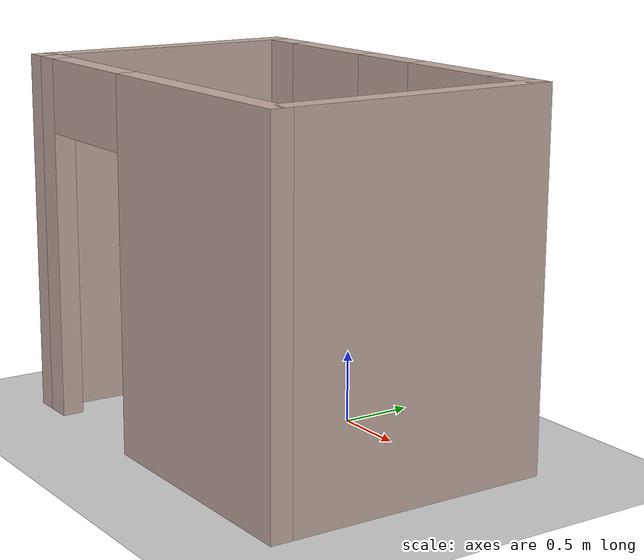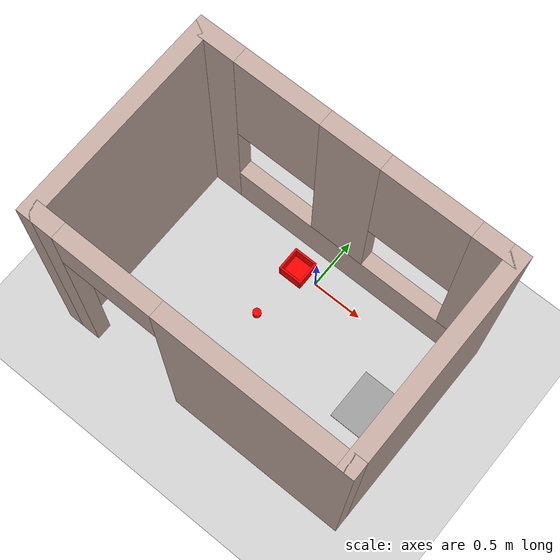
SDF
<sdf version="1.7">
 <world name="default">
  <model name="ground_plane">
   <static>1</static>
   <link name="link">
    <collision name="collision">
     <geometry><plane><normal>0 0 1</normal><size>100 100</size></plane></geometry>
     <surface>
      <contact><collide_bitmask>65535</collide_bitmask></contact>
      <friction><ode><mu>100</mu><mu2>50</mu2></ode></friction>
     </surface>
    </collision>
    <visual name="visual">
     <cast_shadows>0</cast_shadows>
     <geometry><plane><normal>0 0 1</normal><size>100 100</size></plane></geometry>
     <material>
      <script><uri>file://media/materials/scripts/gazebo.material</uri><name>Gazebo/Grey</name></script>
     </material>
    </visual>
   </link>
  </model>
  <model name="box_red">
   <link name="link_0">
    <inertial>
     <mass>0.94</mass>
     <inertia>
      <ixx>0.00316467</ixx>
      <ixy>0</ixy>
      <ixz>0</ixz>
      <iyy>0.00316467</iyy>
      <iyz>0</iyz>
      <izz>0.00626667</izz>
     </inertia>
    </inertial>
    <pose>0 0 -0.03 0 -0 0</pose>
    <visual name="visual">
     <geometry><box><size>0.2 0.2 0.02</size></box></geometry>
     <material>
      <lighting>1</lighting>
      <script><uri>file://media/materials/scripts/gazebo.material</uri><name>Gazebo/Grey</name></script>
      <shader type="pixel"><normal_map>__default__</normal_map></shader>
      <ambient>1 0 0 1</ambient>
      <diffuse>0.7 0.7 0.7 1</diffuse>
      <specular>0.01 0.01 0.01 1</specular>
      <emissive>0 0 0 1</emissive>
     </material>
    </visual>
    <collision name="collision">
     <geometry><box><size>0.2 0.2 0.02</size></box></geometry>
     <surface>
      <friction>
       <ode><mu>1</mu><mu2>1</mu2><fdir1>0 0 0</fdir1><slip1>0</slip1><slip2>0</slip2></ode>
       <torsional>
        <coefficient>1</coefficient>
        <patch_radius>0</patch_radius>
        <surface_radius>0</surface_radius>
        <use_patch_radius>1</use_patch_radius>
        <ode><slip>0</slip></ode>
       </torsional>
      </friction>
      <bounce><restitution_coefficient>0</restitution_coefficient><threshold>1e+06</threshold></bounce>
      <contact>
       <collide_without_contact>0</collide_without_contact>
       <collide_without_contact_bitmask>1</collide_without_contact_bitmask>
       <collide_bitmask>1</collide_bitmask>
       <ode>
        <soft_cfm>0</soft_cfm>
        <soft_erp>0.2</soft_erp>
        <kp>1e+13</kp>
        <kd>1</kd>
        <max_vel>0.01</max_vel>
        <min_depth>0</min_depth>
       </ode>
       <bullet>
        <split_impulse>1</split_impulse>
        <split_impulse_penetration_threshold>-0.01</split_impulse_penetration_threshold>
        <soft_cfm>0</soft_cfm>
        <soft_erp>0.2</soft_erp>
        <kp>1e+13</kp>
        <kd>1</kd>
       </bullet>
      </contact>
     </surface>
    </collision>
   </link>
   <link name="link_1">
    <inertial>
     <mass>2.256</mass>
     <inertia>
      <ixx>0.0409088</ixx>
      <ixy>0</ixy>
      <ixz>0</ixz>
      <iyy>0.0301552</iyy>
      <iyz>0</iyz>
      <izz>0.010904</izz>
     </inertia>
    </inertial>
    <pose>-0.11 0 0.038 0 -0 0</pose>
    <visual name="visual">
     <geometry><box><size>0.02 0.24 0.15</size></box></geometry>
     <material>
      <lighting>1</lighting>
      <script><uri>file://media/materials/scripts/gazebo.material</uri><name>Gazebo/Grey</name></script>
      <shader type="pixel"><normal_map>__default__</normal_map></shader>
      <ambient>1 0 0 1</ambient>
      <diffuse>0.7 0.7 0.7 1</diffuse>
      <specular>0.01 0.01 0.01 1</specular>
      <emissive>0 0 0 1</emissive>
     </material>
    </visual>
    <collision name="collision">
     <geometry><box><size>0.02 0.24 0.15</size></box></geometry>
     <surface>
      <friction>
       <ode><mu>1</mu><mu2>1</mu2><fdir1>0 0 0</fdir1><slip1>0</slip1><slip2>0</slip2></ode>
       <torsional>
        <coefficient>1</coefficient>
        <patch_radius>0</patch_radius>
        <surface_radius>0</surface_radius>
        <use_patch_radius>1</use_patch_radius>
        <ode><slip>0</slip></ode>
       </torsional>
      </friction>
      <bounce><restitution_coefficient>0</restitution_coefficient><threshold>1e+06</threshold></bounce>
      <contact>
       <collide_without_contact>0</collide_without_contact>
       <collide_without_contact_bitmask>1</collide_without_contact_bitmask>
       <collide_bitmask>1</collide_bitmask>
       <ode>
        <soft_cfm>0</soft_cfm>
        <soft_erp>0.2</soft_erp>
        <kp>1e+13</kp>
        <kd>1</kd>
        <max_vel>0.01</max_vel>
        <min_depth>0</min_depth>
       </ode>
       <bullet>
        <split_impulse>1</split_impulse>
        <split_impulse_penetration_threshold>-0.01</split_impulse_penetration_threshold>
        <soft_cfm>0</soft_cfm>
        <soft_erp>0.2</soft_erp>
        <kp>1e+13</kp>
        <kd>1</kd>
       </bullet>
      </contact>
     </surface>
    </collision>
   </link>
   <link name="link_1_clone">
    <inertial>
     <mass>2.256</mass>
     <inertia>
      <ixx>0.0409088</ixx>
      <ixy>0</ixy>
      <ixz>0</ixz>
      <iyy>0.0301552</iyy>
      <iyz>0</iyz>
      <izz>0.010904</izz>
     </inertia>
    </inertial>
    <pose>0.11 -0 0.038 0 -0 0</pose>
    <visual name="visual">
     <geometry><box><size>0.02 0.24 0.15</size></box></geometry>
     <material>
      <lighting>1</lighting>
      <script><uri>file://media/materials/scripts/gazebo.material</uri><name>Gazebo/Grey</name></script>
      <shader type="pixel"><normal_map>__default__</normal_map></shader>
      <ambient>1 0 0 1</ambient>
      <diffuse>0.7 0.7 0.7 1</diffuse>
      <specular>0.01 0.01 0.01 1</specular>
      <emissive>0 0 0 1</emissive>
     </material>
    </visual>
    <collision name="collision">
     <geometry><box><size>0.02 0.24 0.15</size></box></geometry>
     <surface>
      <friction>
       <ode><mu>1</mu><mu2>1</mu2><fdir1>0 0 0</fdir1><slip1>0</slip1><slip2>0</slip2></ode>
       <torsional>
        <coefficient>1</coefficient>
        <patch_radius>0</patch_radius>
        <surface_radius>0</surface_radius>
        <use_patch_radius>1</use_patch_radius>
        <ode><slip>0</slip></ode>
       </torsional>
      </friction>
      <bounce><restitution_coefficient>0</restitution_coefficient><threshold>1e+06</threshold></bounce>
      <contact>
       <collide_without_contact>0</collide_without_contact>
       <collide_without_contact_bitmask>1</collide_without_contact_bitmask>
       <collide_bitmask>1</collide_bitmask>
       <ode>
        <soft_cfm>0</soft_cfm>
        <soft_erp>0.2</soft_erp>
        <kp>1e+13</kp>
        <kd>1</kd>
        <max_vel>0.01</max_vel>
        <min_depth>0</min_depth>
       </ode>
       <bullet>
        <split_impulse>1</split_impulse>
        <split_impulse_penetration_threshold>-0.01</split_impulse_penetration_threshold>
        <soft_cfm>0</soft_cfm>
        <soft_erp>0.2</soft_erp>
        <kp>1e+13</kp>
        <kd>1</kd>
       </bullet>
      </contact>
     </surface>
    </collision>
   </link>
   <link name="link_1_clone_0">
    <inertial>
     <mass>1.88</mass>
     <inertia>
      <ixx>0.0251293</ixx>
      <ixy>0</ixy>
      <ixz>0</ixz>
      <iyy>0.0313333</iyy>
      <iyz>0</iyz>
      <izz>0.00632933</izz>
     </inertia>
    </inertial>
    <pose>0 0.11 0.038 0 -0 0</pose>
    <visual name="visual">
     <geometry><box><size>0.2 0.02 0.15</size></box></geometry>
     <material>
      <lighting>1</lighting>
      <script><uri>file://media/materials/scripts/gazebo.material</uri><name>Gazebo/Grey</name></script>
      <shader type="pixel"><normal_map>__default__</normal_map></shader>
      <ambient>1 0 0 1</ambient>
      <diffuse>0.7 0.7 0.7 1</diffuse>
      <specular>0.01 0.01 0.01 1</specular>
      <emissive>0 0 0 1</emissive>
     </material>
    </visual>
    <collision name="collision">
     <geometry><box><size>0.2 0.02 0.15</size></box></geometry>
     <surface>
      <friction>
       <ode><mu>1</mu><mu2>1</mu2><fdir1>0 0 0</fdir1><slip1>0</slip1><slip2>0</slip2></ode>
       <torsional>
        <coefficient>1</coefficient>
        <patch_radius>0</patch_radius>
        <surface_radius>0</surface_radius>
        <use_patch_radius>1</use_patch_radius>
        <ode><slip>0</slip></ode>
       </torsional>
      </friction>
      <bounce><restitution_coefficient>0</restitution_coefficient><threshold>1e+06</threshold></bounce>
      <contact>
       <collide_without_contact>0</collide_without_contact>
       <collide_without_contact_bitmask>1</collide_without_contact_bitmask>
       <collide_bitmask>1</collide_bitmask>
       <ode>
        <soft_cfm>0</soft_cfm>
        <soft_erp>0.2</soft_erp>
        <kp>1e+13</kp>
        <kd>1</kd>
        <max_vel>0.01</max_vel>
        <min_depth>0</min_depth>
       </ode>
       <bullet>
        <split_impulse>1</split_impulse>
        <split_impulse_penetration_threshold>-0.01</split_impulse_penetration_threshold>
        <soft_cfm>0</soft_cfm>
        <soft_erp>0.2</soft_erp>
        <kp>1e+13</kp>
        <kd>1</kd>
       </bullet>
      </contact>
     </surface>
    </collision>
   </link>
   <link name="link_1_clone_0_clone">
    <inertial>
     <mass>1.88</mass>
     <inertia>
      <ixx>0.0251293</ixx>
      <ixy>0</ixy>
      <ixz>0</ixz>
      <iyy>0.0313333</iyy>
      <iyz>0</iyz>
      <izz>0.00632933</izz>
     </inertia>
    </inertial>
    <pose>-0 -0.11 0.038 0 -0 0</pose>
    <visual name="visual">
     <geometry><box><size>0.2 0.02 0.15</size></box></geometry>
     <material>
      <lighting>1</lighting>
      <script><uri>file://media/materials/scripts/gazebo.material</uri><name>Gazebo/Grey</name></script>
      <shader type="pixel"><normal_map>__default__</normal_map></shader>
      <ambient>1 0 0 1</ambient>
      <diffuse>0.7 0.7 0.7 1</diffuse>
      <specular>0.01 0.01 0.01 1</specular>
      <emissive>0 0 0 1</emissive>
     </material>
    </visual>
    <collision name="collision">
     <geometry><box><size>0.2 0.02 0.15</size></box></geometry>
     <surface>
      <friction>
       <ode><mu>1</mu><mu2>1</mu2><fdir1>0 0 0</fdir1><slip1>0</slip1><slip2>0</slip2></ode>
       <torsional>
        <coefficient>1</coefficient>
        <patch_radius>0</patch_radius>
        <surface_radius>0</surface_radius>
        <use_patch_radius>1</use_patch_radius>
        <ode><slip>0</slip></ode>
       </torsional>
      </friction>
      <bounce><restitution_coefficient>0</restitution_coefficient><threshold>1e+06</threshold></bounce>
      <contact>
       <collide_without_contact>0</collide_without_contact>
       <collide_without_contact_bitmask>1</collide_without_contact_bitmask>
       <collide_bitmask>1</collide_bitmask>
       <ode>
        <soft_cfm>0</soft_cfm>
        <soft_erp>0.2</soft_erp>
        <kp>1e+13</kp>
        <kd>1</kd>
        <max_vel>0.01</max_vel>
        <min_depth>0</min_depth>
       </ode>
       <bullet>
        <split_impulse>1</split_impulse>
        <split_impulse_penetration_threshold>-0.01</split_impulse_penetration_threshold>
        <soft_cfm>0</soft_cfm>
        <soft_erp>0.2</soft_erp>
        <kp>1e+13</kp>
        <kd>1</kd>
       </bullet>
      </contact>
     </surface>
    </collision>
   </link>
   <static>0</static>
   <pose>-0.2 0 0.03 0 -0 0</pose>
  </model>
  <model name="simple_room">
   <link name="Wall_0">
    <collision name="Wall_0_Collision">
     <geometry><box><size>2 0.15 2.5</size></box></geometry>
     <pose>0 0 1.25 0 -0 0</pose>
    </collision>
    <visual name="Wall_0_Visual">
     <pose>0 0 1.25 0 -0 0</pose>
     <geometry><box><size>2 0.15 2.5</size></box></geometry>
     <material>
      <script><uri>file://media/materials/scripts/gazebo.material</uri><name>Gazebo/Grey</name></script>
      <ambient>0.760784 0.662745 0.627451 1</ambient>
     </material>
     <meta><layer>0</layer></meta>
    </visual>
    <pose>-1.425 -0.6025 0 0 -0 1.5708</pose>
   </link>
   <link name="Wall_1">
    <pose>0 0.3225 0 0 -0 0</pose>
    <visual name="Wall_1_Visual_0">
     <pose>-1.2825 0 1.25 0 -0 0</pose>
     <geometry><box><size>0.435 0.15 2.5</size></box></geometry>
     <material>
      <script><uri>file://media/materials/scripts/gazebo.material</uri><name>Gazebo/Grey</name></script>
      <ambient>0.760784 0.662745 0.627451 1</ambient>
     </material>
     <meta><layer>0</layer></meta>
    </visual>
    <collision name="Wall_1_Collision_0">
     <geometry><box><size>0.435 0.15 2.5</size></box></geometry>
     <pose>-1.2825 0 1.25 0 -0 0</pose>
    </collision>
    <visual name="Wall_1_Visual_1">
     <pose>0.2175 0 0.25 0 -0 0</pose>
     <geometry><box><size>2.565 0.15 0.5</size></box></geometry>
     <material>
      <script><uri>file://media/materials/scripts/gazebo.material</uri><name>Gazebo/Grey</name></script>
      <ambient>0.760784 0.662745 0.627451 1</ambient>
     </material>
     <meta><layer>0</layer></meta>
    </visual>
    <collision name="Wall_1_Collision_1">
     <geometry><box><size>2.565 0.15 0.5</size></box></geometry>
     <pose>0.2175 0 0.25 0 -0 0</pose>
    </collision>
    <visual name="Wall_1_Visual_2">
     <pose>0.01 0 1.5 0 -0 0</pose>
     <geometry><box><size>0.55 0.15 2</size></box></geometry>
     <material>
      <script><uri>file://media/materials/scripts/gazebo.material</uri><name>Gazebo/Grey</name></script>
      <ambient>0.760784 0.662745 0.627451 1</ambient>
     </material>
     <meta><layer>0</layer></meta>
    </visual>
    <collision name="Wall_1_Collision_2">
     <geometry><box><size>0.55 0.15 2</size></box></geometry>
     <pose>0.01 0 1.5 0 -0 0</pose>
    </collision>
    <visual name="Wall_1_Visual_3">
     <pose>1.2925 0 1.5 0 -0 0</pose>
     <geometry><box><size>0.415 0.15 2</size></box></geometry>
     <material>
      <script><uri>file://media/materials/scripts/gazebo.material</uri><name>Gazebo/Grey</name></script>
      <ambient>0.760784 0.662745 0.627451 1</ambient>
     </material>
     <meta><layer>0</layer></meta>
    </visual>
    <collision name="Wall_1_Collision_3">
     <geometry><box><size>0.415 0.15 2</size></box></geometry>
     <pose>1.2925 0 1.5 0 -0 0</pose>
    </collision>
    <visual name="Wall_1_Visual_4">
     <pose>-0.665 0 1.9 0 -0 0</pose>
     <geometry><box><size>0.8 0.15 1.2</size></box></geometry>
     <material>
      <script><uri>file://media/materials/scripts/gazebo.material</uri><name>Gazebo/Grey</name></script>
      <ambient>0.760784 0.662745 0.627451 1</ambient>
     </material>
     <meta><layer>0</layer></meta>
    </visual>
    <collision name="Wall_1_Collision_4">
     <geometry><box><size>0.8 0.15 1.2</size></box></geometry>
     <pose>-0.665 0 1.9 0 -0 0</pose>
    </collision>
    <visual name="Wall_1_Visual_5">
     <pose>0.685 0 1.9 0 -0 0</pose>
     <geometry><box><size>0.8 0.15 1.2</size></box></geometry>
     <material>
      <script><uri>file://media/materials/scripts/gazebo.material</uri><name>Gazebo/Grey</name></script>
      <ambient>0.760784 0.662745 0.627451 1</ambient>
     </material>
     <meta><layer>0</layer></meta>
    </visual>
    <collision name="Wall_1_Collision_5">
     <geometry><box><size>0.8 0.15 1.2</size></box></geometry>
     <pose>0.685 0 1.9 0 -0 0</pose>
    </collision>
   </link>
   <link name="Wall_2">
    <collision name="Wall_2_Collision">
     <geometry><box><size>2 0.15 2.5</size></box></geometry>
     <pose>0 0 1.25 0 -0 0</pose>
    </collision>
    <visual name="Wall_2_Visual">
     <pose>0 0 1.25 0 -0 0</pose>
     <geometry><box><size>2 0.15 2.5</size></box></geometry>
     <material>
      <script><uri>file://media/materials/scripts/gazebo.material</uri><name>Gazebo/Grey</name></script>
      <ambient>0.760784 0.662745 0.627451 1</ambient>
     </material>
     <meta><layer>0</layer></meta>
    </visual>
    <pose>1.425 -0.6025 0 0 -0 -1.5708</pose>
   </link>
   <link name="Wall_3">
    <pose>0 -1.5275 0 0 -0 3.14159</pose>
    <visual name="Wall_3_Visual_0">
     <pose>-0.6175 0 1.25 0 -0 0</pose>
     <geometry><box><size>1.765 0.15 2.5</size></box></geometry>
     <material>
      <script><uri>file://media/materials/scripts/gazebo.material</uri><name>Gazebo/Grey</name></script>
      <ambient>0.760784 0.662745 0.627451 1</ambient>
     </material>
     <meta><layer>0</layer></meta>
    </visual>
    <collision name="Wall_3_Collision_0">
     <geometry><box><size>1.765 0.15 2.5</size></box></geometry>
     <pose>-0.6175 0 1.25 0 -0 0</pose>
    </collision>
    <visual name="Wall_3_Visual_1">
     <pose>1.3325 0 1.25 0 -0 0</pose>
     <geometry><box><size>0.335 0.15 2.5</size></box></geometry>
     <material>
      <script><uri>file://media/materials/scripts/gazebo.material</uri><name>Gazebo/Grey</name></script>
      <ambient>0.760784 0.662745 0.627451 1</ambient>
     </material>
     <meta><layer>0</layer></meta>
    </visual>
    <collision name="Wall_3_Collision_1">
     <geometry><box><size>0.335 0.15 2.5</size></box></geometry>
     <pose>1.3325 0 1.25 0 -0 0</pose>
    </collision>
    <visual name="Wall_3_Visual_2">
     <pose>0.715 0 2.25 0 -0 0</pose>
     <geometry><box><size>0.9 0.15 0.5</size></box></geometry>
     <material>
      <script><uri>file://media/materials/scripts/gazebo.material</uri><name>Gazebo/Grey</name></script>
      <ambient>0.760784 0.662745 0.627451 1</ambient>
     </material>
     <meta><layer>0</layer></meta>
    </visual>
    <collision name="Wall_3_Collision_2">
     <geometry><box><size>0.9 0.15 0.5</size></box></geometry>
     <pose>0.715 0 2.25 0 -0 0</pose>
    </collision>
   </link>
   <static>1</static>
  </model>
  <model name="home">
   <link name="link">
    <inertial>
     <mass>1</mass>
     <inertia>
      <ixx>0.166667</ixx>
      <ixy>0</ixy>
      <ixz>0</ixz>
      <iyy>0.166667</iyy>
      <iyz>0</iyz>
      <izz>0.166667</izz>
     </inertia>
    </inertial>
    <visual name="visual">
     <geometry><box><size>0.5 0.5 0.01</size></box></geometry>
     <material>
      <script><name>Gazebo/Grey</name><uri>file://media/materials/scripts/gazebo.material</uri></script>
      <shader type="pixel"><normal_map>__default__</normal_map></shader>
      <ambient>0 0 0 1</ambient>
      <diffuse>0.7 0.7 0.7 1</diffuse>
      <specular>0.01 0.01 0.01 1</specular>
      <emissive>0 0 0 1</emissive>
     </material>
    </visual>
    <collision name="collision">
     <geometry><box><size>0 0 0</size></box></geometry>
     <surface>
      <friction>
       <ode><mu>1</mu><mu2>1</mu2><fdir1>0 0 0</fdir1><slip1>0</slip1><slip2>0</slip2></ode>
       <torsional>
        <coefficient>1</coefficient>
        <patch_radius>0</patch_radius>
        <surface_radius>0</surface_radius>
        <use_patch_radius>1</use_patch_radius>
        <ode><slip>0</slip></ode>
       </torsional>
      </friction>
      <bounce><restitution_coefficient>0</restitution_coefficient><threshold>1e+06</threshold></bounce>
      <contact>
       <collide_without_contact>0</collide_without_contact>
       <collide_without_contact_bitmask>1</collide_without_contact_bitmask>
       <collide_bitmask>1</collide_bitmask>
       <ode>
        <soft_cfm>0</soft_cfm>
        <soft_erp>0.2</soft_erp>
        <kp>1e+13</kp>
        <kd>1</kd>
        <max_vel>0.01</max_vel>
        <min_depth>0</min_depth>
       </ode>
       <bullet>
        <split_impulse>1</split_impulse>
        <split_impulse_penetration_threshold>-0.01</split_impulse_penetration_threshold>
        <soft_cfm>0</soft_cfm>
        <soft_erp>0.2</soft_erp>
        <kp>1e+13</kp>
        <kd>1</kd>
       </bullet>
      </contact>
     </surface>
    </collision>
   </link>
   <static>0</static>
   <pose>1.1 -0.6 0 0 -0 0</pose>
  </model>
  <model name="cylinder_red">
   <link name="link">
    <inertial>
     <mass>0.590619</mass>
     <inertia>
      <ixx>0.00072843</ixx>
      <ixy>0</ixy>
      <ixz>0</ixz>
      <iyy>0.00072843</iyy>
      <iyz>0</iyz>
      <izz>0.0004725</izz>
     </inertia>
    </inertial>
    <visual name="visual">
     <geometry><cylinder><radius>0.04</radius><length>0.1</length></cylinder></geometry>
     <material>
      <script><name>Gazebo/Grey</name><uri>file://media/materials/scripts/gazebo.material</uri></script>
      <shader type="pixel"><normal_map>__default__</normal_map></shader>
      <ambient>1 0 0 1</ambient>
      <diffuse>0.7 0.7 0.7 1</diffuse>
      <specular>0.01 0.01 0.01 1</specular>
      <emissive>0 0 0 1</emissive>
     </material>
    </visual>
    <collision name="collision">
     <geometry><cylinder><radius>0.04</radius><length>0.1</length></cylinder></geometry>
     <surface>
      <friction>
       <ode><mu>1</mu><mu2>1</mu2><fdir1>0 0 0</fdir1><slip1>0</slip1><slip2>0</slip2></ode>
       <torsional>
        <coefficient>1</coefficient>
        <patch_radius>0</patch_radius>
        <surface_radius>0</surface_radius>
        <use_patch_radius>1</use_patch_radius>
        <ode><slip>0</slip></ode>
       </torsional>
      </friction>
      <bounce><restitution_coefficient>0</restitution_coefficient><threshold>1e+06</threshold></bounce>
      <contact>
       <collide_without_contact>0</collide_without_contact>
       <collide_without_contact_bitmask>1</collide_without_contact_bitmask>
       <collide_bitmask>1</collide_bitmask>
       <ode>
        <soft_cfm>0</soft_cfm>
        <soft_erp>0.2</soft_erp>
        <kp>1e+13</kp>
        <kd>1</kd>
        <max_vel>0.01</max_vel>
        <min_depth>0</min_depth>
       </ode>
       <bullet>
        <split_impulse>1</split_impulse>
        <split_impulse_penetration_threshold>-0.01</split_impulse_penetration_threshold>
        <soft_cfm>0</soft_cfm>
        <soft_erp>0.2</soft_erp>
        <kp>1e+13</kp>
        <kd>1</kd>
       </bullet>
      </contact>
     </surface>
    </collision>
   </link>
   <static>0</static>
   <pose>-0.228378 -0.543747 0 0 -0 0</pose>
  </model>
 </world>
</sdf>
